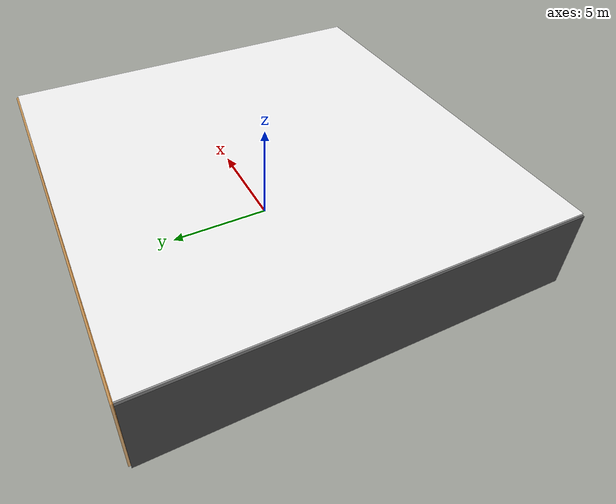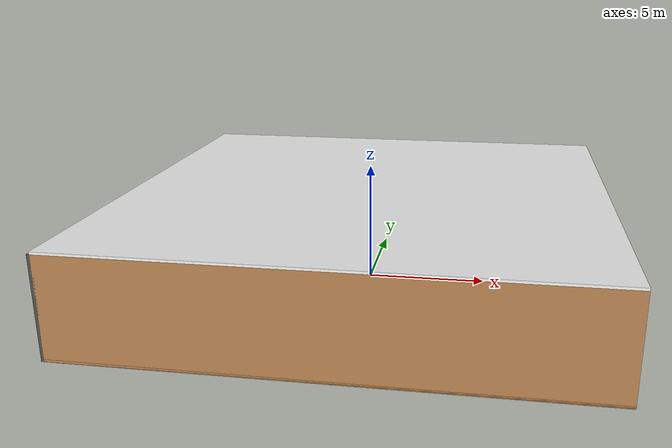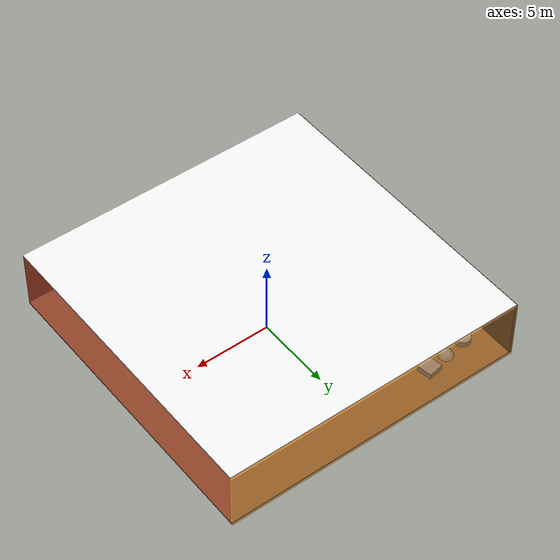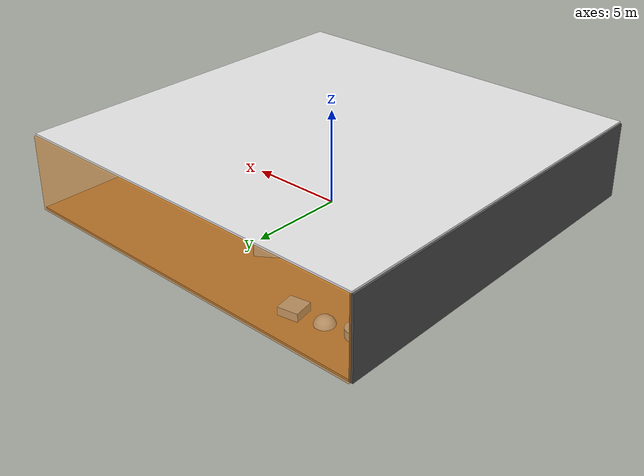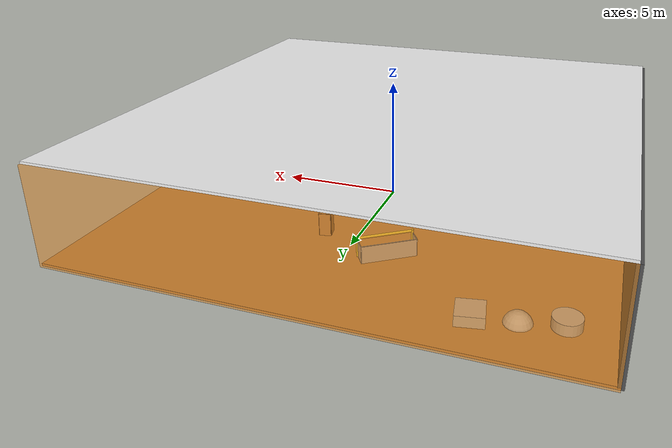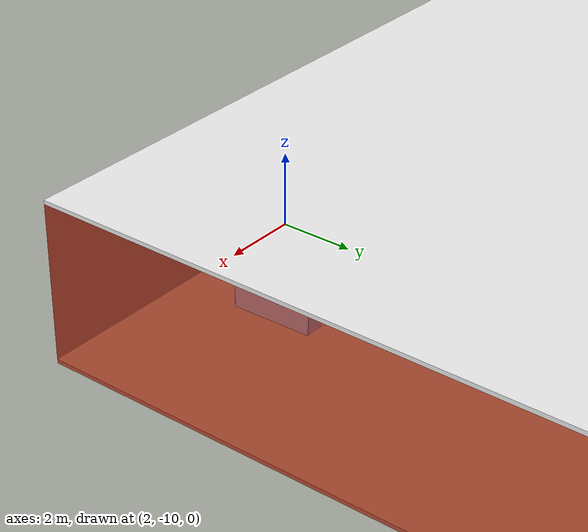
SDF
<sdf version="1.4">
 <world name="default">
  <physics type="ode">
   <max_step_size>0.001</max_step_size>
   <real_time_factor>1</real_time_factor>
   <real_time_update_rate>1000</real_time_update_rate>
   <gravity>0 0 -9.8</gravity>
  </physics>
  <scene><ambient>0.4 0.4 0.4 1</ambient><background>0.7 0.7 0.7 1</background><shadows>1</shadows></scene>
  <model name="Surrounding">
   <static>1</static>
   <link name="Ceiling">
    <collision name="Ceiling_Collision"><geometry><box><size>20 20 0.1</size></box></geometry></collision>
    <visual name="Ceiling_Visual">
     <geometry><box><size>20 20 0.1</size></box></geometry>
     <material>
      <script><uri>file://media/materials/scripts/gazebo.material</uri><name>Gazebo/White</name></script>
     </material>
    </visual>
    <pose>0 0 4.05 0 0 0</pose>
   </link>
   <link name="Wall_South">
    <collision name="Wall_South_Collision">
     <geometry><box><size>20 0 4</size></box></geometry>
     <pose>0 0 2 0 -0 0</pose>
    </collision>
    <visual name="Wall_South_Visual">
     <pose>0 0 2 0 -0 0</pose>
     <geometry><box><size>20 0 4</size></box></geometry>
     <material>
      <script><uri>file://media/materials/scripts/gazebo.material</uri><name>Gazebo/Wood</name></script>
     </material>
    </visual>
    <velocity_decay><linear>0</linear><angular>0</angular></velocity_decay>
    <pose>0 -10 0 0 -0 0</pose>
   </link>
   <link name="Wall_East">
    <collision name="Wall_21_Collision">
     <geometry><box><size>20 0 4</size></box></geometry>
     <pose>0 0 2 0 -0 0</pose>
    </collision>
    <visual name="Wall_21_Visual">
     <pose>0 0 2 0 -0 0</pose>
     <geometry><box><size>20 0 4</size></box></geometry>
     <material>
      <script><uri>file://media/materials/scripts/gazebo.material</uri><name>Gazebo/RedTransparent</name></script>
     </material>
    </visual>
    <velocity_decay><linear>0</linear><angular>0</angular></velocity_decay>
    <pose>10 0 0 0 -0 1.5708</pose>
   </link>
   <link name="Wall_North">
    <collision name="Wall_22_Collision">
     <geometry><box><size>20 0.2 4</size></box></geometry>
     <pose>0 0 2 0 -0 0</pose>
    </collision>
    <visual name="Wall_22_Visual">
     <pose>0 0 2 0 -0 0</pose>
     <geometry><box><size>20 0.2 4</size></box></geometry>
     <material>
      <script>
       <uri>file://media/materials/scripts/gazebo.material</uri>
       <name>Gazebo/OrangeTransparent</name>
      </script>
     </material>
    </visual>
    <velocity_decay><linear>0</linear><angular>0</angular></velocity_decay>
    <pose>0 10 0 0 -0 0</pose>
   </link>
   <link name="Wall_West">
    <collision name="Wall_23_Collision">
     <geometry><box><size>20 0.2 4</size></box></geometry>
     <pose>0 0 2 0 -0 0</pose>
    </collision>
    <visual name="Wall_23_Visual">
     <pose>0 0 2 0 -0 0</pose>
     <geometry><box><size>20 0.2 4</size></box></geometry>
     <material>
      <script><uri>file://media/materials/scripts/gazebo.material</uri><name>Gazebo/Road</name></script>
     </material>
    </visual>
    <velocity_decay><linear>0</linear><angular>0</angular></velocity_decay>
    <pose>-10 0 0 0 0 -1.5708</pose>
   </link>
   <link name="Ground_link">
    <collision name="collision">
     <pose>0 0 .05 0 -0 0</pose>
     <geometry><box><size>20 20 0.1</size></box></geometry>
    </collision>
    <visual name="visual">
     <pose>0 0 .05 0 -0 0</pose>
     <geometry><box><size>20 20 0.1</size></box></geometry>
     <material>
      <script><uri>file://media/materials/scripts/gazebo.material</uri><name>Gazebo/Wood</name></script>
     </material>
    </visual>
   </link>
   <static>1</static>
  </model>
  <spherical_coordinates>
   <surface_model>EARTH_WGS84</surface_model>
   <latitude_deg>0</latitude_deg>
   <longitude_deg>0</longitude_deg>
   <elevation>0</elevation>
   <heading_deg>0</heading_deg>
  </spherical_coordinates>
  <light name="lightball_0" type="diffuse">
   <diffuse>0.8 0.8 0.8 1</diffuse>
   <specular>0.2 0.2 0.2 1</specular>
   <attenuation>
    <range>100</range>
    <constant>0.7</constant>
    <linear>0.01</linear>
    <quadratic>0.001</quadratic>
   </attenuation>
   <direction>-0.5 0.1 -0.9</direction>
   <pose>-5.37810462694 -5.74543526726 3.83309744515 0 0 0</pose>
  </light>
  <light name="lightball_1" type="diffuse">
   <diffuse>0.8 0.8 0.8 1</diffuse>
   <specular>0.2 0.2 0.2 1</specular>
   <attenuation>
    <range>100</range>
    <constant>0.7</constant>
    <linear>0.01</linear>
    <quadratic>0.001</quadratic>
   </attenuation>
   <direction>-0.5 0.1 -0.9</direction>
   <pose>-5.17749157231 9.21212514235 1.6598715018 0 0 0</pose>
  </light>
  <light name="lightball_2" type="diffuse">
   <diffuse>0.8 0.8 0.8 1</diffuse>
   <specular>0.2 0.2 0.2 1</specular>
   <attenuation>
    <range>100</range>
    <constant>0.7</constant>
    <linear>0.01</linear>
    <quadratic>0.001</quadratic>
   </attenuation>
   <direction>-0.5 0.1 -0.9</direction>
   <pose>8.19906508384 -5.09417312377 1.24699316101 0 0 0</pose>
  </light>
  <light name="lightball_3" type="diffuse">
   <diffuse>0.8 0.8 0.8 1</diffuse>
   <specular>0.2 0.2 0.2 1</specular>
   <attenuation>
    <range>100</range>
    <constant>0.7</constant>
    <linear>0.01</linear>
    <quadratic>0.001</quadratic>
   </attenuation>
   <direction>-0.5 0.1 -0.9</direction>
   <pose>-8.34378412054 0.298202800158 3.77201058735 0 0 0</pose>
  </light>
  <light name="lightball_4" type="diffuse">
   <diffuse>0.8 0.8 0.8 1</diffuse>
   <specular>0.2 0.2 0.2 1</specular>
   <attenuation>
    <range>100</range>
    <constant>0.7</constant>
    <linear>0.01</linear>
    <quadratic>0.001</quadratic>
   </attenuation>
   <direction>-0.5 0.1 -0.9</direction>
   <pose>1.9899599766 6.48244446511 1.93334674758 0 0 0</pose>
  </light>
  <light name="lightball_5" type="diffuse">
   <diffuse>0.8 0.8 0.8 1</diffuse>
   <specular>0.2 0.2 0.2 1</specular>
   <attenuation>
    <range>100</range>
    <constant>0.7</constant>
    <linear>0.01</linear>
    <quadratic>0.001</quadratic>
   </attenuation>
   <direction>-0.5 0.1 -0.9</direction>
   <pose>9.53504388727 5.83659986928 3.81989794352 0 0 0</pose>
  </light>
  <light name="lightball_6" type="diffuse">
   <diffuse>0.8 0.8 0.8 1</diffuse>
   <specular>0.2 0.2 0.2 1</specular>
   <attenuation>
    <range>100</range>
    <constant>0.7</constant>
    <linear>0.01</linear>
    <quadratic>0.001</quadratic>
   </attenuation>
   <direction>-0.5 0.1 -0.9</direction>
   <pose>-3.10094298116 5.59983003054 2.03812078377 0 0 0</pose>
  </light>
  <include>
   <uri>model://textured_shapes</uri>
   <pose>-6.84666527198 7.9980843449 0 0 0 1.74684978659</pose>
  </include>
  <include>
   <uri>model://robocup_3Dsim_goal</uri>
   <pose>-1.48004854404 5.25362325051 0 0 0 2.17610370397</pose>
  </include>
  <include><uri>model://cabinet</uri><pose>1.20291015593 4.5687770842 0 0 0 1.76066299154</pose></include>
  <include>
   <uri>model://robocup_3Dsim_goal</uri>
   <pose>5.26983244742 -7.33223559906 0 0 0 0.027391843508</pose>
  </include>
 </world>
</sdf>

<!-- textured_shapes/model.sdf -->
<sdf version="1.6">
  <model name="textured_shapes">
    <pose>0 0 0.5 0 0 0</pose>
    <link name="box">
      <pose>0 -1.5 0 0 0 0</pose>
      <collision name="collision">
        <geometry>
          <box>
            <size>1 1 1</size>
          </box>
        </geometry>
      </collision>
      <visual name="visual">
        <geometry>
          <box>
            <size>1 1 1</size>
          </box>
        </geometry>
        <material>
          <script>
            <uri>model://../model_source/models/textured_shapes/materials/scripts</uri>
            <uri>model://../model_source/models/textured_shapes/materials/textures</uri>
            <name>TexturedShape/Squares</name>
          </script>
        </material>
      </visual>
    </link>
    <link name="sphere">
      <collision name="collision">
        <geometry>
          <sphere>
            <radius>0.5</radius>
          </sphere>
        </geometry>
      </collision>
      <visual name="visual">
        <geometry>
          <sphere>
            <radius>0.5</radius>
          </sphere>
        </geometry>
        <material>
          <script>
            <uri>model://../model_source/models/textured_shapes/materials/scripts</uri>
            <uri>model://../model_source/models/textured_shapes/materials/textures</uri>
            <name>TexturedShape/Squares</name>
          </script>
        </material>
      </visual>
    </link>
    <link name="cylinder">
      <pose>0 1.5 0 0 0 0</pose>
      <collision name="collision">
        <geometry>
          <cylinder>
            <radius>0.5</radius>
            <length>1</length>
          </cylinder>
        </geometry>
      </collision>
      <visual name="visual">
        <geometry>
          <cylinder>
            <radius>0.5</radius>
            <length>1</length>
          </cylinder>
        </geometry>
        <material>
          <script>
            <uri>model://../model_source/models/textured_shapes/materials/scripts</uri>
            <uri>model://../model_source/models/textured_shapes/materials/textures</uri>
            <name>TexturedShape/Squares</name>
          </script>
        </material>
      </visual>
    </link>
  </model>
</sdf>

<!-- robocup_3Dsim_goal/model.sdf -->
<sdf version="1.5">
  <model name="robocup_3d_goal">
    <static>true</static>
    <link name="left_post">
      <pose>0 1.05 0.45 0 0 0</pose>
      <collision name="collision">
        <geometry>
          <cylinder>
            <radius>0.05</radius>
            <length>0.9</length>
          </cylinder>
        </geometry>
      </collision>
      <visual name="visual">
        <geometry>
          <cylinder>
            <radius>0.05</radius>
            <length>0.9</length>
          </cylinder>
        </geometry>
        <material>
          <script>
            <uri>file://media/materials/scripts/gazebo.material</uri>
            <name>Gazebo/ZincYellow</name>
          </script>
        </material>
      </visual>
    </link>
    <link name="left_support_horiz_lower">
      <pose>0.30 1.05 0.01 0 0 0</pose>
      <collision name="collision">
        <geometry>
          <box>
            <size>0.50 0.02 0.02</size>
          </box>
        </geometry>
      </collision>
      <visual name="visual">
        <geometry>
          <box>
            <size>0.50 0.02 0.02</size>
          </box>
        </geometry>
        <material>
          <script>
            <uri>file://media/materials/scripts/gazebo.material</uri>
            <name>Gazebo/White</name>
          </script>
        </material>
      </visual>
    </link>
    <link name="left_support_horiz_upper">
      <pose>0.30 1.05 0.79 0 0 0</pose>
      <collision name="collision">
        <geometry>
          <box>
            <size>0.50 0.02 0.02</size>
          </box>
        </geometry>
      </collision>
      <visual name="visual">
        <geometry>
          <box>
            <size>0.50 0.02 0.02</size>
          </box>
        </geometry>
        <material>
          <script>
            <uri>file://media/materials/scripts/gazebo.material</uri>
            <name>Gazebo/White</name>
          </script>
        </material>
      </visual>
    </link>
    <link name="left_support_vertical">
      <pose>0.56 1.05 0.4 0 1.5708 0</pose>
      <collision name="collision">
        <geometry>
          <box>
            <size>0.80 0.02 0.02</size>
          </box>
        </geometry>
      </collision>
      <visual name="visual">
        <geometry>
          <box>
            <size>0.80 0.02 0.02</size>
          </box>
        </geometry>
        <material>
          <script>
            <uri>file://media/materials/scripts/gazebo.material</uri>
            <name>Gazebo/White</name>
          </script>
        </material>
      </visual>
    </link>
    <link name="right_support_horiz_lower">
      <pose>0.30 -1.05 0.01 0 0 0</pose>
      <collision name="collision">
        <geometry>
          <box>
            <size>0.50 0.02 0.02</size>
          </box>
        </geometry>
      </collision>
      <visual name="visual">
        <geometry>
          <box>
            <size>0.50 0.02 0.02</size>
          </box>
        </geometry>
        <material>
          <script>
            <uri>file://media/materials/scripts/gazebo.material</uri>
            <name>Gazebo/White</name>
          </script>
        </material>
      </visual>
    </link>
    <link name="right_support_horiz_upper">
      <pose>0.30 -1.05 0.79 0 0 0</pose>
      <collision name="collision">
        <geometry>
          <box>
            <size>0.50 0.02 0.02</size>
          </box>
        </geometry>
      </collision>
      <visual name="visual">
        <geometry>
          <box>
            <size>0.50 0.02 0.02</size>
          </box>
        </geometry>
        <material>
          <script>
            <uri>file://media/materials/scripts/gazebo.material</uri>
            <name>Gazebo/White</name>
          </script>
        </material>
      </visual>
    </link>
    <link name="right_support_vertical">
      <pose>0.56 -1.05 0.4 0 1.5708 0</pose>
      <collision name="collision">
        <geometry>
          <box>
            <size>0.80 0.02 0.02</size>
          </box>
        </geometry>
      </collision>
      <visual name="visual">
        <geometry>
          <box>
            <size>0.80 0.02 0.02</size>
          </box>
        </geometry>
        <material>
          <script>
            <uri>file://media/materials/scripts/gazebo.material</uri>
            <name>Gazebo/White</name>
          </script>
        </material>
      </visual>
    </link>
    <link name="center_support_horiz_lower">
      <pose>0.56 0 0.01 0 1.5708 0</pose>
      <collision name="collision">
        <geometry>
          <box>
            <size>0.02 2.08 0.02</size>
          </box>
        </geometry>
      </collision>
      <visual name="visual">
        <geometry>
          <box>
            <size>0.02 2.08 0.02</size>
          </box>
        </geometry>
        <material>
          <script>
            <uri>file://media/materials/scripts/gazebo.material</uri>
            <name>Gazebo/White</name>
          </script>
        </material>
      </visual>
    </link>
    <link name="center_support_horiz_upper">
      <pose>0.56 0 0.79 0 1.5708 0</pose>
      <collision name="collision">
        <geometry>
          <box>
            <size>0.02 2.08 0.02</size>
          </box>
        </geometry>
      </collision>
      <visual name="visual">
        <geometry>
          <box>
            <size>0.02 2.08 0.02</size>
          </box>
        </geometry>
        <material>
          <script>
            <uri>file://media/materials/scripts/gazebo.material</uri>
            <name>Gazebo/White</name>
          </script>
        </material>
      </visual>
    </link>
    <link name="right_post">
      <pose>0 -1.05 0.45 0 0 0</pose>
      <collision name="collision">
        <geometry>
          <cylinder>
            <radius>0.05</radius>
            <length>0.9</length>
          </cylinder>
        </geometry>
      </collision>
      <visual name="visual">
        <geometry>
          <cylinder>
            <radius>0.05</radius>
            <length>0.9</length>
          </cylinder>
        </geometry>
        <material>
          <script>
            <uri>file://media/materials/scripts/gazebo.material</uri>
            <name>Gazebo/ZincYellow</name>
          </script>
        </material>
      </visual>
    </link>
    <link name="crossbar">
      <pose>0 0 0.85 1.57 1.57 0</pose>
      <collision name="collision">
        <geometry>
          <cylinder>
            <radius>0.05</radius>
            <length>2.0</length>
          </cylinder>
        </geometry>
      </collision>
      <visual name="visual">
        <geometry>
          <cylinder>
            <radius>0.05</radius>
            <length>2.0</length>
          </cylinder>
        </geometry>
        <material>
          <script>
            <uri>file://media/materials/scripts/gazebo.material</uri>
            <name>Gazebo/ZincYellow</name>
          </script>
        </material>
      </visual>
    </link>
    <link name="center_net">
      <pose>0.56 0 0.40 0 0 0</pose>
      <collision name="collision">
        <geometry>
          <box>
            <size>0.01 2.1 0.80</size>
          </box>
        </geometry>
      </collision>
      <visual name="visual">
        <geometry>
          <box>
            <size>0.01 2.1 0.80</size>
          </box>
        </geometry>
        <material>
          <script>
            <uri>model://../model_source/models/robocup09_spl_field/materials/scripts/</uri>
            <uri>model://../model_source/models/robocup09_spl_field/materials/textures/</uri>
            <name>RoboCup/Net</name>
          </script>
        </material>
      </visual>
    </link>
    <link name="left_net">
      <pose>0.30 1.05 0.40 0 0 0</pose>
      <collision name="collision">
        <geometry>
          <box>
            <size>0.50 0.01 0.76</size>
          </box>
        </geometry>
      </collision>
      <visual name="visual">
        <geometry>
          <box>
            <size>0.50 0.01 0.76</size>
          </box>
        </geometry>
        <material>
          <script>
            <uri>model://../model_source/models/robocup09_spl_field/materials/scripts/</uri>
            <uri>model://../model_source/models/robocup09_spl_field/materials/textures/</uri>
            <name>RoboCup/Net</name>
          </script>
        </material>
      </visual>
    </link>
    <link name="right_net">
      <pose>0.30 -1.05 0.40 0 0 0</pose>
      <collision name="collision">
        <geometry>
          <box>
            <size>0.50 0.01 0.76</size>
          </box>
        </geometry>
      </collision>
      <visual name="visual">
        <geometry>
          <box>
            <size>0.50 0.01 0.76</size>
          </box>
        </geometry>
        <material>
          <script>
            <uri>model://../model_source/models/robocup09_spl_field/materials/scripts/</uri>
            <uri>model://../model_source/models/robocup09_spl_field/materials/textures/</uri>
            <name>RoboCup/Net</name>
          </script>
        </material>
      </visual>
    </link>
  </model>
</sdf>

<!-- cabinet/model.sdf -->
<sdf version="1.5">
  <model name="cabinet">
    <static>true</static>
    <link name="cabinet_bottom_plate">
      <inertial>
        <pose>0 0 -1 0 0 0</pose>
        <inertia>
          <ixx>2.050000</ixx>
          <ixy>0</ixy>
          <ixz>0</ixz>
          <iyy>2.050000</iyy>
          <iyz>0</iyz>
          <izz>2.050000</izz>
        </inertia>
        <mass>25.000000</mass>
      </inertial>
      <collision name="cabinet_bottom_plate_geom">
        <pose>0 0 0.010000 0 0 0</pose>
        <geometry>
          <box>
            <size>0.450000 0.450000 0.020000</size>
          </box>
        </geometry>
      </collision>
      <visual name="cabinet_bottom_plate_geom_visual">
        <pose>0 0 0.010000 0 0 0</pose>
        <geometry>
          <box>
            <size>0.450000 0.450000 0.020000</size>
          </box>
        </geometry>
        <material>
          <script>
            <uri>model://media/materials/scripts/gazebo.material</uri>
            <name>Gazebo/Wood</name>
          </script>
        </material>
      </visual>
      <collision name="cabinet_bottom_plate_geom_cabinet_back_plate">
        <pose>0.235000 0 0.510000 0 0 0</pose>
        <geometry>
          <box>
            <size>0.020000 0.450000 1.020000</size>
          </box>
        </geometry>
      </collision>
      <visual name="cabinet_bottom_plate_geom_cabinet_back_plate_visual">
        <pose>0.235000 0 0.510000 0 0 0</pose>
        <geometry>
          <box>
            <size>0.020000 0.450000 1.020000</size>
          </box>
        </geometry>
        <material>
          <script>
            <uri>model://media/materials/scripts/gazebo.material</uri>
            <name>Gazebo/Wood</name>
          </script>
        </material>
      </visual>
      <collision name="cabinet_bottom_plate_geom_cabinet_left_plate">
        <pose>0 0.235000 0.510000 0 0 0</pose>
        <geometry>
          <box>
            <size>0.450000 0.020000 1.020000</size>
          </box>
        </geometry>
      </collision>
      <visual name="cabinet_bottom_plate_geom_cabinet_left_plate_visual">
        <pose>0 0.235000 0.510000 0 0 0</pose>
        <geometry>
          <box>
            <size>0.450000 0.020000 1.020000</size>
          </box>
        </geometry>
        <material>
          <script>
            <uri>model://media/materials/scripts/gazebo.material</uri>
            <name>Gazebo/Wood</name>
          </script>
        </material>
      </visual>
      <collision name="cabinet_bottom_plate_geom_cabinet_middle_plate">
        <pose>0 0 0.510000 0 0 0</pose>
        <geometry>
          <box>
            <size>0.450000 0.450000 0.020000</size>
          </box>
        </geometry>
      </collision>
      <visual name="cabinet_bottom_plate_geom_cabinet_middle_plate_visual">
        <pose>0 0 0.510000 0 0 0</pose>
        <geometry>
          <box>
            <size>0.450000 0.450000 0.020000</size>
          </box>
        </geometry>
        <material>
          <script>
            <uri>model://media/materials/scripts/gazebo.material</uri>
            <name>Gazebo/Wood</name>
          </script>
        </material>
      </visual>
      <collision name="cabinet_bottom_plate_geom_cabinet_right_plate">
        <pose>0 -0.235000 0.510000 0 0 0</pose>
        <geometry>
          <box>
            <size>0.450000 0.020000 1.020000</size>
          </box>
        </geometry>
      </collision>
      <visual name="cabinet_bottom_plate_geom_cabinet_right_plate_visual">
        <pose>0 -0.235000 0.510000 0 0 0</pose>
        <geometry>
          <box>
            <size>0.450000 0.020000 1.020000</size>
          </box>
        </geometry>
        <material>
          <script>
            <uri>model://media/materials/scripts/gazebo.material</uri>
            <name>Gazebo/Wood</name>
          </script>
        </material>
      </visual>
      <collision name="cabinet_bottom_plate_geom_cabinet_top_plate">
        <pose>0 0 1.010000 0 0 0</pose>
        <geometry>
          <box>
            <size>0.450000 0.450000 0.020000</size>
          </box>
        </geometry>
      </collision>
      <visual name="cabinet_bottom_plate_geom_cabinet_top_plate_visual">
        <pose>0 0 1.010000 0 0 0</pose>
        <geometry>
          <box>
            <size>0.450000 0.450000 0.020000</size>
          </box>
        </geometry>
        <material>
          <script>
            <uri>model://media/materials/scripts/gazebo.material</uri>
            <name>Gazebo/Wood</name>
          </script>
        </material>
      </visual>
    </link>
  </model>
</sdf>
